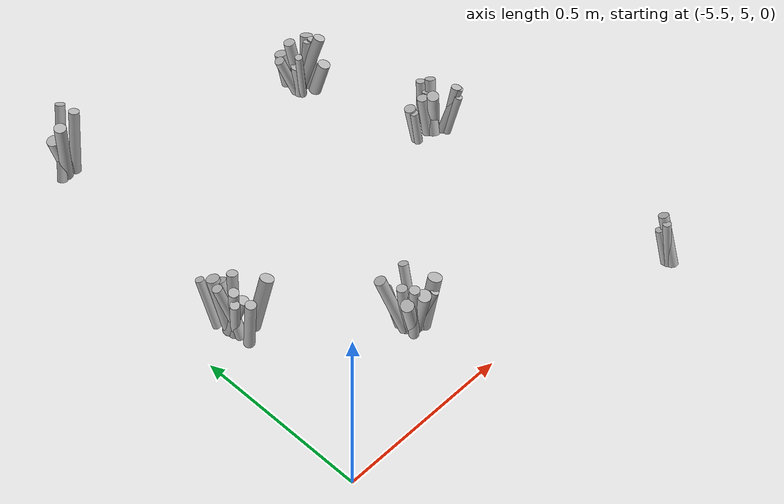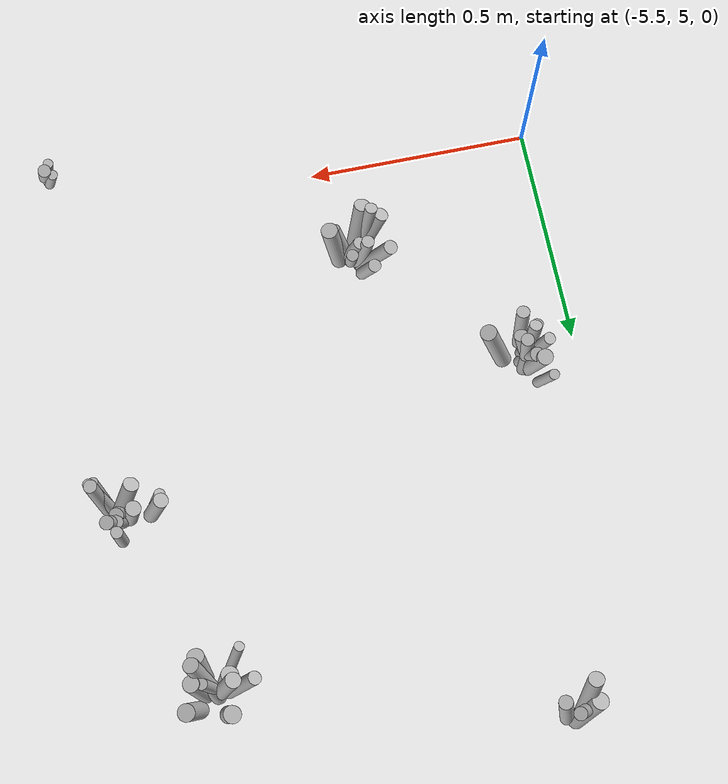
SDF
<sdf version="1.6">
 <world name="default">
  <model name="tussocks">
   <static>true</static>
   <link name="tuft26_0">
    <pose>-5.0745 5.2723 0.0608 0 0.3001 2.0773</pose>
    <visual name="tuft26_0_v">
     <geometry><cylinder><radius>0.0145</radius><length>0.1321</length></cylinder></geometry>
     <material>
      <script>
       <uri>model://bushfire/materials/scripts</uri>
       <uri>model://bushfire/materials/textures</uri>
       <name>Bushfire/Tussock</name>
      </script>
     </material>
    </visual>
   </link>
   <link name="tuft26_1">
    <pose>-5.0099 5.2075 0.0788 0 0.1497 5.9313</pose>
    <visual name="tuft26_1_v">
     <geometry><cylinder><radius>0.0189</radius><length>0.1714</length></cylinder></geometry>
     <material>
      <script>
       <uri>model://bushfire/materials/scripts</uri>
       <uri>model://bushfire/materials/textures</uri>
       <name>Bushfire/Foliage2</name>
      </script>
     </material>
    </visual>
   </link>
   <link name="tuft26_2">
    <pose>-5.0936 5.2573 0.0927 0 0.3402 2.4877</pose>
    <visual name="tuft26_2_v">
     <geometry><cylinder><radius>0.0157</radius><length>0.2016</length></cylinder></geometry>
     <material>
      <script>
       <uri>model://bushfire/materials/scripts</uri>
       <uri>model://bushfire/materials/textures</uri>
       <name>Bushfire/Tussock</name>
      </script>
     </material>
    </visual>
   </link>
   <link name="tuft26_3">
    <pose>-5.0788 5.1971 0.0990 0 0.1934 3.7652</pose>
    <visual name="tuft26_3_v">
     <geometry><cylinder><radius>0.0137</radius><length>0.2153</length></cylinder></geometry>
     <material>
      <script>
       <uri>model://bushfire/materials/scripts</uri>
       <uri>model://bushfire/materials/textures</uri>
       <name>Bushfire/Foliage2</name>
      </script>
     </material>
    </visual>
   </link>
   <link name="tuft26_4">
    <pose>-5.0303 5.2055 0.0657 0 0.3400 5.5138</pose>
    <visual name="tuft26_4_v">
     <geometry><cylinder><radius>0.0118</radius><length>0.1428</length></cylinder></geometry>
     <material>
      <script>
       <uri>model://bushfire/materials/scripts</uri>
       <uri>model://bushfire/materials/textures</uri>
       <name>Bushfire/Foliage2</name>
      </script>
     </material>
    </visual>
   </link>
   <link name="tuft26_5">
    <pose>-5.0710 5.2373 0.0744 0 0.1047 2.5564</pose>
    <visual name="tuft26_5_v">
     <geometry><cylinder><radius>0.0142</radius><length>0.1617</length></cylinder></geometry>
     <material>
      <script>
       <uri>model://bushfire/materials/scripts</uri>
       <uri>model://bushfire/materials/textures</uri>
       <name>Bushfire/Foliage2</name>
      </script>
     </material>
    </visual>
   </link>
   <link name="tuft26_6">
    <pose>-5.0483 5.2226 0.0638 0 0.2399 2.4728</pose>
    <visual name="tuft26_6_v">
     <geometry><cylinder><radius>0.0137</radius><length>0.1386</length></cylinder></geometry>
     <material>
      <script>
       <uri>model://bushfire/materials/scripts</uri>
       <uri>model://bushfire/materials/textures</uri>
       <name>Bushfire/Foliage2</name>
      </script>
     </material>
    </visual>
   </link>
   <link name="tuft26_7">
    <pose>-5.0630 5.1933 0.0915 0 0.3201 4.1565</pose>
    <visual name="tuft26_7_v">
     <geometry><cylinder><radius>0.0181</radius><length>0.1990</length></cylinder></geometry>
     <material>
      <script>
       <uri>model://bushfire/materials/scripts</uri>
       <uri>model://bushfire/materials/textures</uri>
       <name>Bushfire/Foliage2</name>
      </script>
     </material>
    </visual>
   </link>
   <link name="tuft26_8">
    <pose>-5.0400 5.2506 0.0909 0 0.2978 1.3742</pose>
    <visual name="tuft26_8_v">
     <geometry><cylinder><radius>0.0131</radius><length>0.1976</length></cylinder></geometry>
     <material>
      <script>
       <uri>model://bushfire/materials/scripts</uri>
       <uri>model://bushfire/materials/textures</uri>
       <name>Bushfire/Foliage2</name>
      </script>
     </material>
    </visual>
   </link>
   <link name="tuft26_9">
    <pose>-5.0849 5.2027 0.0823 0 0.4195 3.5751</pose>
    <visual name="tuft26_9_v">
     <geometry><cylinder><radius>0.0174</radius><length>0.1788</length></cylinder></geometry>
     <material>
      <script>
       <uri>model://bushfire/materials/scripts</uri>
       <uri>model://bushfire/materials/textures</uri>
       <name>Bushfire/Tussock</name>
      </script>
     </material>
    </visual>
   </link>
   <link name="tuft56_0">
    <pose>-4.5825 6.1433 0.0903 0 0.1896 2.8603</pose>
    <visual name="tuft56_0_v">
     <geometry><cylinder><radius>0.0172</radius><length>0.1963</length></cylinder></geometry>
     <material>
      <script>
       <uri>model://bushfire/materials/scripts</uri>
       <uri>model://bushfire/materials/textures</uri>
       <name>Bushfire/Foliage2</name>
      </script>
     </material>
    </visual>
   </link>
   <link name="tuft56_1">
    <pose>-4.5372 6.0861 0.0536 0 0.2896 5.0611</pose>
    <visual name="tuft56_1_v">
     <geometry><cylinder><radius>0.0192</radius><length>0.1166</length></cylinder></geometry>
     <material>
      <script>
       <uri>model://bushfire/materials/scripts</uri>
       <uri>model://bushfire/materials/textures</uri>
       <name>Bushfire/Tussock</name>
      </script>
     </material>
    </visual>
   </link>
   <link name="tuft56_2">
    <pose>-4.5529 6.1358 0.0771 0 0.2170 0.1690</pose>
    <visual name="tuft56_2_v">
     <geometry><cylinder><radius>0.0126</radius><length>0.1677</length></cylinder></geometry>
     <material>
      <script>
       <uri>model://bushfire/materials/scripts</uri>
       <uri>model://bushfire/materials/textures</uri>
       <name>Bushfire/Tussock</name>
      </script>
     </material>
    </visual>
   </link>
   <link name="tuft56_3">
    <pose>-4.5424 6.1229 0.0916 0 0.3205 5.5053</pose>
    <visual name="tuft56_3_v">
     <geometry><cylinder><radius>0.0178</radius><length>0.1991</length></cylinder></geometry>
     <material>
      <script>
       <uri>model://bushfire/materials/scripts</uri>
       <uri>model://bushfire/materials/textures</uri>
       <name>Bushfire/Foliage2</name>
      </script>
     </material>
    </visual>
   </link>
   <link name="tuft56_4">
    <pose>-4.5813 6.1959 0.0517 0 0.1818 1.9793</pose>
    <visual name="tuft56_4_v">
     <geometry><cylinder><radius>0.0196</radius><length>0.1123</length></cylinder></geometry>
     <material>
      <script>
       <uri>model://bushfire/materials/scripts</uri>
       <uri>model://bushfire/materials/textures</uri>
       <name>Bushfire/Tussock</name>
      </script>
     </material>
    </visual>
   </link>
   <link name="tuft56_5">
    <pose>-4.6165 6.1422 0.0717 0 0.3816 3.0311</pose>
    <visual name="tuft56_5_v">
     <geometry><cylinder><radius>0.0151</radius><length>0.1559</length></cylinder></geometry>
     <material>
      <script>
       <uri>model://bushfire/materials/scripts</uri>
       <uri>model://bushfire/materials/textures</uri>
       <name>Bushfire/Tussock</name>
      </script>
     </material>
    </visual>
   </link>
   <link name="tuft56_6">
    <pose>-4.5259 6.1348 0.0770 0 0.1585 6.2634</pose>
    <visual name="tuft56_6_v">
     <geometry><cylinder><radius>0.0182</radius><length>0.1673</length></cylinder></geometry>
     <material>
      <script>
       <uri>model://bushfire/materials/scripts</uri>
       <uri>model://bushfire/materials/textures</uri>
       <name>Bushfire/Foliage2</name>
      </script>
     </material>
    </visual>
   </link>
   <link name="tuft56_7">
    <pose>-4.5882 6.1244 0.0529 0 0.1349 3.4610</pose>
    <visual name="tuft56_7_v">
     <geometry><cylinder><radius>0.0191</radius><length>0.1150</length></cylinder></geometry>
     <material>
      <script>
       <uri>model://bushfire/materials/scripts</uri>
       <uri>model://bushfire/materials/textures</uri>
       <name>Bushfire/Foliage2</name>
      </script>
     </material>
    </visual>
   </link>
   <link name="tuft56_8">
    <pose>-4.5514 6.1341 0.0565 0 0.3653 5.9488</pose>
    <visual name="tuft56_8_v">
     <geometry><cylinder><radius>0.0121</radius><length>0.1228</length></cylinder></geometry>
     <material>
      <script>
       <uri>model://bushfire/materials/scripts</uri>
       <uri>model://bushfire/materials/textures</uri>
       <name>Bushfire/Foliage2</name>
      </script>
     </material>
    </visual>
   </link>
   <link name="tuft56_9">
    <pose>-4.6043 6.0975 0.0887 0 0.2907 3.7983</pose>
    <visual name="tuft56_9_v">
     <geometry><cylinder><radius>0.0113</radius><length>0.1929</length></cylinder></geometry>
     <material>
      <script>
       <uri>model://bushfire/materials/scripts</uri>
       <uri>model://bushfire/materials/textures</uri>
       <name>Bushfire/Foliage2</name>
      </script>
     </material>
    </visual>
   </link>
   <link name="tuft56_10">
    <pose>-4.5056 6.1762 0.0668 0 0.2433 0.6896</pose>
    <visual name="tuft56_10_v">
     <geometry><cylinder><radius>0.0194</radius><length>0.1452</length></cylinder></geometry>
     <material>
      <script>
       <uri>model://bushfire/materials/scripts</uri>
       <uri>model://bushfire/materials/textures</uri>
       <name>Bushfire/Foliage2</name>
      </script>
     </material>
    </visual>
   </link>
   <link name="tuft60_0">
    <pose>-5.3781 5.5348 0.0622 0 0.3581 5.2904</pose>
    <visual name="tuft60_0_v">
     <geometry><cylinder><radius>0.0158</radius><length>0.1353</length></cylinder></geometry>
     <material>
      <script>
       <uri>model://bushfire/materials/scripts</uri>
       <uri>model://bushfire/materials/textures</uri>
       <name>Bushfire/Foliage2</name>
      </script>
     </material>
    </visual>
   </link>
   <link name="tuft60_1">
    <pose>-5.3832 5.5344 0.0858 0 0.2413 4.2205</pose>
    <visual name="tuft60_1_v">
     <geometry><cylinder><radius>0.0141</radius><length>0.1866</length></cylinder></geometry>
     <material>
      <script>
       <uri>model://bushfire/materials/scripts</uri>
       <uri>model://bushfire/materials/textures</uri>
       <name>Bushfire/Foliage2</name>
      </script>
     </material>
    </visual>
   </link>
   <link name="tuft60_2">
    <pose>-5.3785 5.4801 0.0733 0 0.1079 4.7524</pose>
    <visual name="tuft60_2_v">
     <geometry><cylinder><radius>0.0149</radius><length>0.1594</length></cylinder></geometry>
     <material>
      <script>
       <uri>model://bushfire/materials/scripts</uri>
       <uri>model://bushfire/materials/textures</uri>
       <name>Bushfire/Foliage2</name>
      </script>
     </material>
    </visual>
   </link>
   <link name="tuft60_3">
    <pose>-5.3746 5.5435 0.0951 0 0.1168 0.6312</pose>
    <visual name="tuft60_3_v">
     <geometry><cylinder><radius>0.0145</radius><length>0.2068</length></cylinder></geometry>
     <material>
      <script>
       <uri>model://bushfire/materials/scripts</uri>
       <uri>model://bushfire/materials/textures</uri>
       <name>Bushfire/Foliage2</name>
      </script>
     </material>
    </visual>
   </link>
   <link name="tuft60_4">
    <pose>-5.3915 5.5218 0.0726 0 0.2995 4.1539</pose>
    <visual name="tuft60_4_v">
     <geometry><cylinder><radius>0.0128</radius><length>0.1579</length></cylinder></geometry>
     <material>
      <script>
       <uri>model://bushfire/materials/scripts</uri>
       <uri>model://bushfire/materials/textures</uri>
       <name>Bushfire/Tussock</name>
      </script>
     </material>
    </visual>
   </link>
   <link name="tuft60_5">
    <pose>-5.4048 5.6079 0.0750 0 0.2357 1.9057</pose>
    <visual name="tuft60_5_v">
     <geometry><cylinder><radius>0.0117</radius><length>0.1630</length></cylinder></geometry>
     <material>
      <script>
       <uri>model://bushfire/materials/scripts</uri>
       <uri>model://bushfire/materials/textures</uri>
       <name>Bushfire/Foliage2</name>
      </script>
     </material>
    </visual>
   </link>
   <link name="tuft60_6">
    <pose>-5.3923 5.5430 0.0880 0 0.2611 2.7997</pose>
    <visual name="tuft60_6_v">
     <geometry><cylinder><radius>0.0135</radius><length>0.1912</length></cylinder></geometry>
     <material>
      <script>
       <uri>model://bushfire/materials/scripts</uri>
       <uri>model://bushfire/materials/textures</uri>
       <name>Bushfire/Tussock</name>
      </script>
     </material>
    </visual>
   </link>
   <link name="tuft60_7">
    <pose>-5.3912 5.5704 0.0848 0 0.2158 1.8889</pose>
    <visual name="tuft60_7_v">
     <geometry><cylinder><radius>0.0178</radius><length>0.1843</length></cylinder></geometry>
     <material>
      <script>
       <uri>model://bushfire/materials/scripts</uri>
       <uri>model://bushfire/materials/textures</uri>
       <name>Bushfire/Tussock</name>
      </script>
     </material>
    </visual>
   </link>
   <link name="tuft60_8">
    <pose>-5.3128 5.5133 0.0772 0 0.2762 5.9233</pose>
    <visual name="tuft60_8_v">
     <geometry><cylinder><radius>0.0189</radius><length>0.1679</length></cylinder></geometry>
     <material>
      <script>
       <uri>model://bushfire/materials/scripts</uri>
       <uri>model://bushfire/materials/textures</uri>
       <name>Bushfire/Foliage2</name>
      </script>
     </material>
    </visual>
   </link>
   <link name="tuft60_9">
    <pose>-5.3813 5.5465 0.0823 0 0.3531 1.6288</pose>
    <visual name="tuft60_9_v">
     <geometry><cylinder><radius>0.0157</radius><length>0.1789</length></cylinder></geometry>
     <material>
      <script>
       <uri>model://bushfire/materials/scripts</uri>
       <uri>model://bushfire/materials/textures</uri>
       <name>Bushfire/Tussock</name>
      </script>
     </material>
    </visual>
   </link>
   <link name="tuft72_2">
    <pose>-5.3211 6.3405 0.0691 0 0.2690 3.4234</pose>
    <visual name="tuft72_2_v">
     <geometry><cylinder><radius>0.0193</radius><length>0.1501</length></cylinder></geometry>
     <material>
      <script>
       <uri>model://bushfire/materials/scripts</uri>
       <uri>model://bushfire/materials/textures</uri>
       <name>Bushfire/Tussock</name>
      </script>
     </material>
    </visual>
   </link>
   <link name="tuft72_4">
    <pose>-5.3110 6.3443 0.1097 0 0.3041 0.5419</pose>
    <visual name="tuft72_4_v">
     <geometry><cylinder><radius>0.0145</radius><length>0.2386</length></cylinder></geometry>
     <material>
      <script>
       <uri>model://bushfire/materials/scripts</uri>
       <uri>model://bushfire/materials/textures</uri>
       <name>Bushfire/Foliage2</name>
      </script>
     </material>
    </visual>
   </link>
   <link name="tuft72_6">
    <pose>-5.2727 6.3345 0.0975 0 0.1286 6.0869</pose>
    <visual name="tuft72_6_v">
     <geometry><cylinder><radius>0.0155</radius><length>0.2120</length></cylinder></geometry>
     <material>
      <script>
       <uri>model://bushfire/materials/scripts</uri>
       <uri>model://bushfire/materials/textures</uri>
       <name>Bushfire/Tussock</name>
      </script>
     </material>
    </visual>
   </link>
   <link name="tuft72_8">
    <pose>-5.3238 6.3179 0.0991 0 0.2007 4.3263</pose>
    <visual name="tuft72_8_v">
     <geometry><cylinder><radius>0.0176</radius><length>0.2155</length></cylinder></geometry>
     <material>
      <script>
       <uri>model://bushfire/materials/scripts</uri>
       <uri>model://bushfire/materials/textures</uri>
       <name>Bushfire/Foliage2</name>
      </script>
     </material>
    </visual>
   </link>
   <link name="tuft107_0">
    <pose>-4.4046 4.8989 0.0680 0 0.1632 2.1415</pose>
    <visual name="tuft107_0_v">
     <geometry><cylinder><radius>0.0114</radius><length>0.1478</length></cylinder></geometry>
     <material>
      <script>
       <uri>model://bushfire/materials/scripts</uri>
       <uri>model://bushfire/materials/textures</uri>
       <name>Bushfire/Foliage2</name>
      </script>
     </material>
    </visual>
   </link>
   <link name="tuft107_2">
    <pose>-4.4077 4.9100 0.0545 0 0.2813 2.0346</pose>
    <visual name="tuft107_2_v">
     <geometry><cylinder><radius>0.0114</radius><length>0.1186</length></cylinder></geometry>
     <material>
      <script>
       <uri>model://bushfire/materials/scripts</uri>
       <uri>model://bushfire/materials/textures</uri>
       <name>Bushfire/Tussock</name>
      </script>
     </material>
    </visual>
   </link>
   <link name="tuft107_9">
    <pose>-4.3965 4.9022 0.0750 0 0.3457 1.7192</pose>
    <visual name="tuft107_9_v">
     <geometry><cylinder><radius>0.0144</radius><length>0.1630</length></cylinder></geometry>
     <material>
      <script>
       <uri>model://bushfire/materials/scripts</uri>
       <uri>model://bushfire/materials/textures</uri>
       <name>Bushfire/Foliage2</name>
      </script>
     </material>
    </visual>
   </link>
   <link name="tuft165_0">
    <pose>-4.5061 5.7235 0.0615 0 0.2293 2.9427</pose>
    <visual name="tuft165_0_v">
     <geometry><cylinder><radius>0.0167</radius><length>0.1337</length></cylinder></geometry>
     <material>
      <script>
       <uri>model://bushfire/materials/scripts</uri>
       <uri>model://bushfire/materials/textures</uri>
       <name>Bushfire/Foliage2</name>
      </script>
     </material>
    </visual>
   </link>
   <link name="tuft165_1">
    <pose>-4.4186 5.7736 0.0672 0 0.1017 1.3240</pose>
    <visual name="tuft165_1_v">
     <geometry><cylinder><radius>0.0134</radius><length>0.1461</length></cylinder></geometry>
     <material>
      <script>
       <uri>model://bushfire/materials/scripts</uri>
       <uri>model://bushfire/materials/textures</uri>
       <name>Bushfire/Foliage2</name>
      </script>
     </material>
    </visual>
   </link>
   <link name="tuft165_2">
    <pose>-4.3895 5.6805 0.0745 0 0.1578 5.7196</pose>
    <visual name="tuft165_2_v">
     <geometry><cylinder><radius>0.0151</radius><length>0.1619</length></cylinder></geometry>
     <material>
      <script>
       <uri>model://bushfire/materials/scripts</uri>
       <uri>model://bushfire/materials/textures</uri>
       <name>Bushfire/Foliage2</name>
      </script>
     </material>
    </visual>
   </link>
   <link name="tuft165_3">
    <pose>-4.4245 5.7371 0.0573 0 0.2580 1.2179</pose>
    <visual name="tuft165_3_v">
     <geometry><cylinder><radius>0.0152</radius><length>0.1245</length></cylinder></geometry>
     <material>
      <script>
       <uri>model://bushfire/materials/scripts</uri>
       <uri>model://bushfire/materials/textures</uri>
       <name>Bushfire/Foliage2</name>
      </script>
     </material>
    </visual>
   </link>
   <link name="tuft165_4">
    <pose>-4.4521 5.7254 0.0616 0 0.1596 2.3866</pose>
    <visual name="tuft165_4_v">
     <geometry><cylinder><radius>0.0172</radius><length>0.1339</length></cylinder></geometry>
     <material>
      <script>
       <uri>model://bushfire/materials/scripts</uri>
       <uri>model://bushfire/materials/textures</uri>
       <name>Bushfire/Foliage2</name>
      </script>
     </material>
    </visual>
   </link>
   <link name="tuft165_5">
    <pose>-4.4125 5.7403 0.0739 0 0.2780 0.9491</pose>
    <visual name="tuft165_5_v">
     <geometry><cylinder><radius>0.0157</radius><length>0.1607</length></cylinder></geometry>
     <material>
      <script>
       <uri>model://bushfire/materials/scripts</uri>
       <uri>model://bushfire/materials/textures</uri>
       <name>Bushfire/Tussock</name>
      </script>
     </material>
    </visual>
   </link>
   <link name="tuft165_6">
    <pose>-4.4313 5.7169 0.0601 0 0.3688 1.1414</pose>
    <visual name="tuft165_6_v">
     <geometry><cylinder><radius>0.0161</radius><length>0.1306</length></cylinder></geometry>
     <material>
      <script>
       <uri>model://bushfire/materials/scripts</uri>
       <uri>model://bushfire/materials/textures</uri>
       <name>Bushfire/Foliage2</name>
      </script>
     </material>
    </visual>
   </link>
   <link name="tuft165_7">
    <pose>-4.3943 5.6690 0.0626 0 0.2107 5.5024</pose>
    <visual name="tuft165_7_v">
     <geometry><cylinder><radius>0.0120</radius><length>0.1361</length></cylinder></geometry>
     <material>
      <script>
       <uri>model://bushfire/materials/scripts</uri>
       <uri>model://bushfire/materials/textures</uri>
       <name>Bushfire/Foliage2</name>
      </script>
     </material>
    </visual>
   </link>
   <link name="tuft165_8">
    <pose>-4.4388 5.7065 0.0807 0 0.3762 3.7326</pose>
    <visual name="tuft165_8_v">
     <geometry><cylinder><radius>0.0175</radius><length>0.1755</length></cylinder></geometry>
     <material>
      <script>
       <uri>model://bushfire/materials/scripts</uri>
       <uri>model://bushfire/materials/textures</uri>
       <name>Bushfire/Foliage2</name>
      </script>
     </material>
    </visual>
   </link>
   <link name="tuft165_9">
    <pose>-4.3938 5.6802 0.0742 0 0.2868 5.6683</pose>
    <visual name="tuft165_9_v">
     <geometry><cylinder><radius>0.0130</radius><length>0.1613</length></cylinder></geometry>
     <material>
      <script>
       <uri>model://bushfire/materials/scripts</uri>
       <uri>model://bushfire/materials/textures</uri>
       <name>Bushfire/Foliage2</name>
      </script>
     </material>
    </visual>
   </link>
   <link name="tuft165_10">
    <pose>-4.5084 5.7102 0.0584 0 0.1965 3.1268</pose>
    <visual name="tuft165_10_v">
     <geometry><cylinder><radius>0.0124</radius><length>0.1269</length></cylinder></geometry>
     <material>
      <script>
       <uri>model://bushfire/materials/scripts</uri>
       <uri>model://bushfire/materials/textures</uri>
       <name>Bushfire/Tussock</name>
      </script>
     </material>
    </visual>
   </link>
  </model>
 </world>
</sdf>
